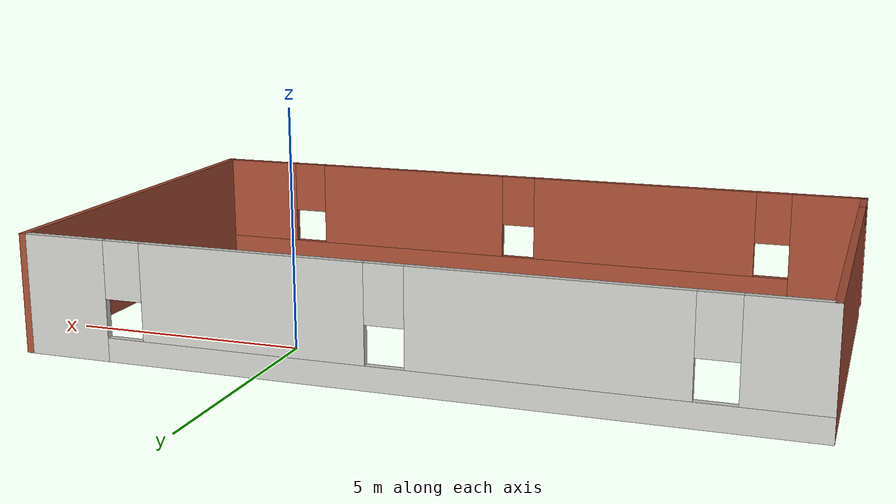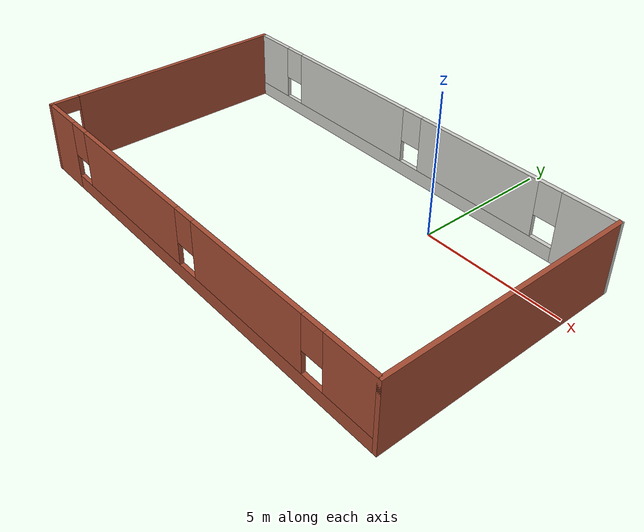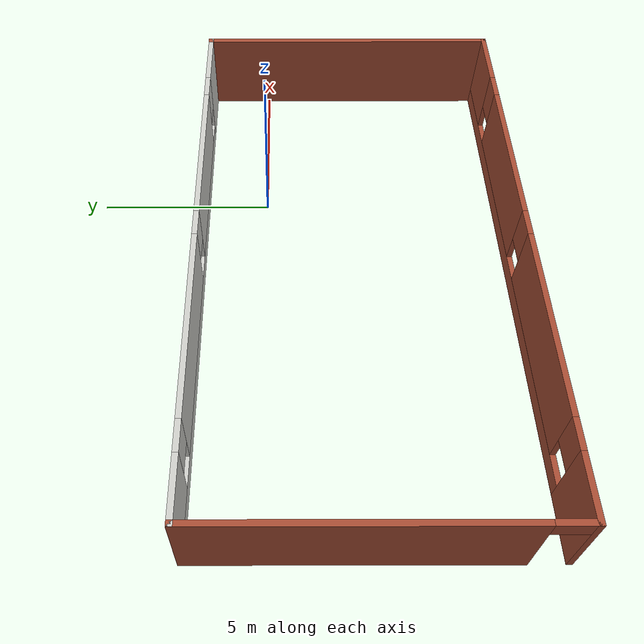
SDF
<?xml version='1.0'?>
<sdf version='1.7'>
  <model name='Untitled'>
    <pose>-2.87773 -2.56189 0 0 -0 0</pose>
    <link name='Wall_1'>
      <pose>0 -4.425 0 0 -0 0</pose>
      <visual name='Wall_1_Visual_0'>
        <pose>-7.17344 0 1.25 0 -0 0</pose>
        <geometry>
          <box>
            <size>1.65313 0.15 2.5</size>
          </box>
        </geometry>
        <material>
          <script>
            <uri>file://media/materials/scripts/gazebo.material</uri>
            <name>Gazebo/Bricks</name>
          </script>
          <ambient>0.760784 0.662745 0.627451 1</ambient>
        </material>
        <meta>
          <layer>0</layer>
        </meta>
      </visual>
      <collision name='Wall_1_Collision_0'>
        <geometry>
          <box>
            <size>1.65313 0.15 2.5</size>
          </box>
        </geometry>
        <pose>-7.17344 0 1.25 0 -0 0</pose>
      </collision>
      <visual name='Wall_1_Visual_1'>
        <pose>0.826563 0 0.25 0 -0 0</pose>
        <geometry>
          <box>
            <size>14.3469 0.15 0.5</size>
          </box>
        </geometry>
        <material>
          <script>
            <uri>file://media/materials/scripts/gazebo.material</uri>
            <name>Gazebo/Bricks</name>
          </script>
          <ambient>0.760784 0.662745 0.627451 1</ambient>
        </material>
        <meta>
          <layer>0</layer>
        </meta>
      </visual>
      <collision name='Wall_1_Collision_1'>
        <geometry>
          <box>
            <size>14.3469 0.15 0.5</size>
          </box>
        </geometry>
        <pose>0.826563 0 0.25 0 -0 0</pose>
      </collision>
      <visual name='Wall_1_Visual_2'>
        <pose>-2.90051 0 1.5 0 -0 0</pose>
        <geometry>
          <box>
            <size>5.29272 0.15 2</size>
          </box>
        </geometry>
        <material>
          <script>
            <uri>file://media/materials/scripts/gazebo.material</uri>
            <name>Gazebo/Bricks</name>
          </script>
          <ambient>0.760784 0.662745 0.627451 1</ambient>
        </material>
        <meta>
          <layer>0</layer>
        </meta>
      </visual>
      <collision name='Wall_1_Collision_2'>
        <geometry>
          <box>
            <size>5.29272 0.15 2</size>
          </box>
        </geometry>
        <pose>-2.90051 0 1.5 0 -0 0</pose>
      </collision>
      <visual name='Wall_1_Visual_3'>
        <pose>2.90526 0 1.5 0 -0 0</pose>
        <geometry>
          <box>
            <size>4.71883 0.15 2</size>
          </box>
        </geometry>
        <material>
          <script>
            <uri>file://media/materials/scripts/gazebo.material</uri>
            <name>Gazebo/Bricks</name>
          </script>
          <ambient>0.760784 0.662745 0.627451 1</ambient>
        </material>
        <meta>
          <layer>0</layer>
        </meta>
      </visual>
      <collision name='Wall_1_Collision_3'>
        <geometry>
          <box>
            <size>4.71883 0.15 2</size>
          </box>
        </geometry>
        <pose>2.90526 0 1.5 0 -0 0</pose>
      </collision>
      <visual name='Wall_1_Visual_4'>
        <pose>7.03234 0 1.5 0 -0 0</pose>
        <geometry>
          <box>
            <size>1.93532 0.15 2</size>
          </box>
        </geometry>
        <material>
          <script>
            <uri>file://media/materials/scripts/gazebo.material</uri>
            <name>Gazebo/Bricks</name>
          </script>
          <ambient>0.760784 0.662745 0.627451 1</ambient>
        </material>
        <meta>
          <layer>0</layer>
        </meta>
      </visual>
      <collision name='Wall_1_Collision_4'>
        <geometry>
          <box>
            <size>1.93532 0.15 2</size>
          </box>
        </geometry>
        <pose>7.03234 0 1.5 0 -0 0</pose>
      </collision>
      <visual name='Wall_1_Visual_5'>
        <pose>-5.94687 0 1.9 0 -0 0</pose>
        <geometry>
          <box>
            <size>0.8 0.15 1.2</size>
          </box>
        </geometry>
        <material>
          <script>
            <uri>file://media/materials/scripts/gazebo.material</uri>
            <name>Gazebo/Bricks</name>
          </script>
          <ambient>0.760784 0.662745 0.627451 1</ambient>
        </material>
        <meta>
          <layer>0</layer>
        </meta>
      </visual>
      <collision name='Wall_1_Collision_5'>
        <geometry>
          <box>
            <size>0.8 0.15 1.2</size>
          </box>
        </geometry>
        <pose>-5.94687 0 1.9 0 -0 0</pose>
      </collision>
      <visual name='Wall_1_Visual_6'>
        <pose>0.145845 0 1.9 0 -0 0</pose>
        <geometry>
          <box>
            <size>0.8 0.15 1.2</size>
          </box>
        </geometry>
        <material>
          <script>
            <uri>file://media/materials/scripts/gazebo.material</uri>
            <name>Gazebo/Bricks</name>
          </script>
          <ambient>0.760784 0.662745 0.627451 1</ambient>
        </material>
        <meta>
          <layer>0</layer>
        </meta>
      </visual>
      <collision name='Wall_1_Collision_6'>
        <geometry>
          <box>
            <size>0.8 0.15 1.2</size>
          </box>
        </geometry>
        <pose>0.145845 0 1.9 0 -0 0</pose>
      </collision>
      <visual name='Wall_1_Visual_7'>
        <pose>5.66468 0 1.9 0 -0 0</pose>
        <geometry>
          <box>
            <size>0.8 0.15 1.2</size>
          </box>
        </geometry>
        <material>
          <script>
            <uri>file://media/materials/scripts/gazebo.material</uri>
            <name>Gazebo/Bricks</name>
          </script>
          <ambient>0.760784 0.662745 0.627451 1</ambient>
        </material>
        <meta>
          <layer>0</layer>
        </meta>
      </visual>
      <collision name='Wall_1_Collision_7'>
        <geometry>
          <box>
            <size>0.8 0.15 1.2</size>
          </box>
        </geometry>
        <pose>5.66468 0 1.9 0 -0 0</pose>
      </collision>
    </link>
    <link name='Wall_2'>
      <collision name='Wall_2_Collision'>
        <geometry>
          <box>
            <size>9 0.15 2.5</size>
          </box>
        </geometry>
        <pose>0 0 1.25 0 -0 0</pose>
      </collision>
      <visual name='Wall_2_Visual'>
        <pose>0 0 1.25 0 -0 0</pose>
        <geometry>
          <box>
            <size>9 0.15 2.5</size>
          </box>
        </geometry>
        <material>
          <script>
            <uri>file://media/materials/scripts/gazebo.material</uri>
            <name>Gazebo/Bricks</name>
          </script>
          <ambient>0.760784 0.662745 0.627451 1</ambient>
        </material>
        <meta>
          <layer>0</layer>
        </meta>
      </visual>
      <pose>7.925 0 0 0 -0 1.5708</pose>
    </link>
    <link name='Wall_3'>
      <pose>0 4.425 0 0 -0 3.14159</pose>
      <visual name='Wall_3_Visual_0'>
        <pose>-7.03952 0 1.25 0 -0 0</pose>
        <geometry>
          <box>
            <size>1.92097 0.15 2.5</size>
          </box>
        </geometry>
        <material>
          <script>
            <uri>file://media/materials/scripts/gazebo.material</uri>
            <name>Gazebo/CeilingTiled</name>
          </script>
          <ambient>0.760784 0.662745 0.627451 1</ambient>
        </material>
        <meta>
          <layer>0</layer>
        </meta>
      </visual>
      <collision name='Wall_3_Collision_0'>
        <geometry>
          <box>
            <size>1.92097 0.15 2.5</size>
          </box>
        </geometry>
        <pose>-7.03952 0 1.25 0 -0 0</pose>
      </collision>
      <visual name='Wall_3_Visual_1'>
        <pose>0.960482 0 0.25 0 -0 0</pose>
        <geometry>
          <box>
            <size>14.079 0.15 0.5</size>
          </box>
        </geometry>
        <material>
          <script>
            <uri>file://media/materials/scripts/gazebo.material</uri>
            <name>Gazebo/CeilingTiled</name>
          </script>
          <ambient>0.760784 0.662745 0.627451 1</ambient>
        </material>
        <meta>
          <layer>0</layer>
        </meta>
      </visual>
      <collision name='Wall_3_Collision_1'>
        <geometry>
          <box>
            <size>14.079 0.15 0.5</size>
          </box>
        </geometry>
        <pose>0.960482 0 0.25 0 -0 0</pose>
      </collision>
      <visual name='Wall_3_Visual_2'>
        <pose>-2.92251 0 1.5 0 -0 0</pose>
        <geometry>
          <box>
            <size>4.71304 0.15 2</size>
          </box>
        </geometry>
        <material>
          <script>
            <uri>file://media/materials/scripts/gazebo.material</uri>
            <name>Gazebo/CeilingTiled</name>
          </script>
          <ambient>0.760784 0.662745 0.627451 1</ambient>
        </material>
        <meta>
          <layer>0</layer>
        </meta>
      </visual>
      <collision name='Wall_3_Collision_2'>
        <geometry>
          <box>
            <size>4.71304 0.15 2</size>
          </box>
        </geometry>
        <pose>-2.92251 0 1.5 0 -0 0</pose>
      </collision>
      <visual name='Wall_3_Visual_3'>
        <pose>2.90357 0 1.5 0 -0 0</pose>
        <geometry>
          <box>
            <size>5.33913 0.15 2</size>
          </box>
        </geometry>
        <material>
          <script>
            <uri>file://media/materials/scripts/gazebo.material</uri>
            <name>Gazebo/CeilingTiled</name>
          </script>
          <ambient>0.760784 0.662745 0.627451 1</ambient>
        </material>
        <meta>
          <layer>0</layer>
        </meta>
      </visual>
      <collision name='Wall_3_Collision_3'>
        <geometry>
          <box>
            <size>5.33913 0.15 2</size>
          </box>
        </geometry>
        <pose>2.90357 0 1.5 0 -0 0</pose>
      </collision>
      <visual name='Wall_3_Visual_4'>
        <pose>7.18657 0 1.5 0 -0 0</pose>
        <geometry>
          <box>
            <size>1.62686 0.15 2</size>
          </box>
        </geometry>
        <material>
          <script>
            <uri>file://media/materials/scripts/gazebo.material</uri>
            <name>Gazebo/CeilingTiled</name>
          </script>
          <ambient>0.760784 0.662745 0.627451 1</ambient>
        </material>
        <meta>
          <layer>0</layer>
        </meta>
      </visual>
      <collision name='Wall_3_Collision_4'>
        <geometry>
          <box>
            <size>1.62686 0.15 2</size>
          </box>
        </geometry>
        <pose>7.18657 0 1.5 0 -0 0</pose>
      </collision>
      <visual name='Wall_3_Visual_5'>
        <pose>-5.67903 0 1.9 0 -0 0</pose>
        <geometry>
          <box>
            <size>0.8 0.15 1.2</size>
          </box>
        </geometry>
        <material>
          <script>
            <uri>file://media/materials/scripts/gazebo.material</uri>
            <name>Gazebo/CeilingTiled</name>
          </script>
          <ambient>0.760784 0.662745 0.627451 1</ambient>
        </material>
        <meta>
          <layer>0</layer>
        </meta>
      </visual>
      <collision name='Wall_3_Collision_5'>
        <geometry>
          <box>
            <size>0.8 0.15 1.2</size>
          </box>
        </geometry>
        <pose>-5.67903 0 1.9 0 -0 0</pose>
      </collision>
      <visual name='Wall_3_Visual_6'>
        <pose>-0.165992 0 1.9 0 -0 0</pose>
        <geometry>
          <box>
            <size>0.8 0.15 1.2</size>
          </box>
        </geometry>
        <material>
          <script>
            <uri>file://media/materials/scripts/gazebo.material</uri>
            <name>Gazebo/CeilingTiled</name>
          </script>
          <ambient>0.760784 0.662745 0.627451 1</ambient>
        </material>
        <meta>
          <layer>0</layer>
        </meta>
      </visual>
      <collision name='Wall_3_Collision_6'>
        <geometry>
          <box>
            <size>0.8 0.15 1.2</size>
          </box>
        </geometry>
        <pose>-0.165992 0 1.9 0 -0 0</pose>
      </collision>
      <visual name='Wall_3_Visual_7'>
        <pose>5.97314 0 1.9 0 -0 0</pose>
        <geometry>
          <box>
            <size>0.8 0.15 1.2</size>
          </box>
        </geometry>
        <material>
          <script>
            <uri>file://media/materials/scripts/gazebo.material</uri>
            <name>Gazebo/CeilingTiled</name>
          </script>
          <ambient>0.760784 0.662745 0.627451 1</ambient>
        </material>
        <meta>
          <layer>0</layer>
        </meta>
      </visual>
      <collision name='Wall_3_Collision_7'>
        <geometry>
          <box>
            <size>0.8 0.15 1.2</size>
          </box>
        </geometry>
        <pose>5.97314 0 1.9 0 -0 0</pose>
      </collision>
    </link>
    <link name='Wall_5'>
      <pose>-7.925 0 0 0 -0 1.5708</pose>
      <visual name='Wall_5_Visual_0'>
        <pose>-4.43543 0 1.25 0 -0 0</pose>
        <geometry>
          <box>
            <size>0.129146 0.15 2.5</size>
          </box>
        </geometry>
        <material>
          <script>
            <uri>file://media/materials/scripts/gazebo.material</uri>
            <name>Gazebo/Bricks</name>
          </script>
          <ambient>0.760784 0.662745 0.627451 1</ambient>
        </material>
        <meta>
          <layer>0</layer>
        </meta>
      </visual>
      <collision name='Wall_5_Collision_0'>
        <geometry>
          <box>
            <size>0.129146 0.15 2.5</size>
          </box>
        </geometry>
        <pose>-4.43543 0 1.25 0 -0 0</pose>
      </collision>
      <visual name='Wall_5_Visual_1'>
        <pose>0.514573 0 1.25 0 -0 0</pose>
        <geometry>
          <box>
            <size>7.97085 0.15 2.5</size>
          </box>
        </geometry>
        <material>
          <script>
            <uri>file://media/materials/scripts/gazebo.material</uri>
            <name>Gazebo/Bricks</name>
          </script>
          <ambient>0.760784 0.662745 0.627451 1</ambient>
        </material>
        <meta>
          <layer>0</layer>
        </meta>
      </visual>
      <collision name='Wall_5_Collision_1'>
        <geometry>
          <box>
            <size>7.97085 0.15 2.5</size>
          </box>
        </geometry>
        <pose>0.514573 0 1.25 0 -0 0</pose>
      </collision>
      <visual name='Wall_5_Visual_2'>
        <pose>-3.92085 0 2.25 0 -0 0</pose>
        <geometry>
          <box>
            <size>0.9 0.15 0.5</size>
          </box>
        </geometry>
        <material>
          <script>
            <uri>file://media/materials/scripts/gazebo.material</uri>
            <name>Gazebo/Bricks</name>
          </script>
          <ambient>0.760784 0.662745 0.627451 1</ambient>
        </material>
        <meta>
          <layer>0</layer>
        </meta>
      </visual>
      <collision name='Wall_5_Collision_2'>
        <geometry>
          <box>
            <size>0.9 0.15 0.5</size>
          </box>
        </geometry>
        <pose>-3.92085 0 2.25 0 -0 0</pose>
      </collision>
    </link>
    <static>1</static>
  </model>
</sdf>
